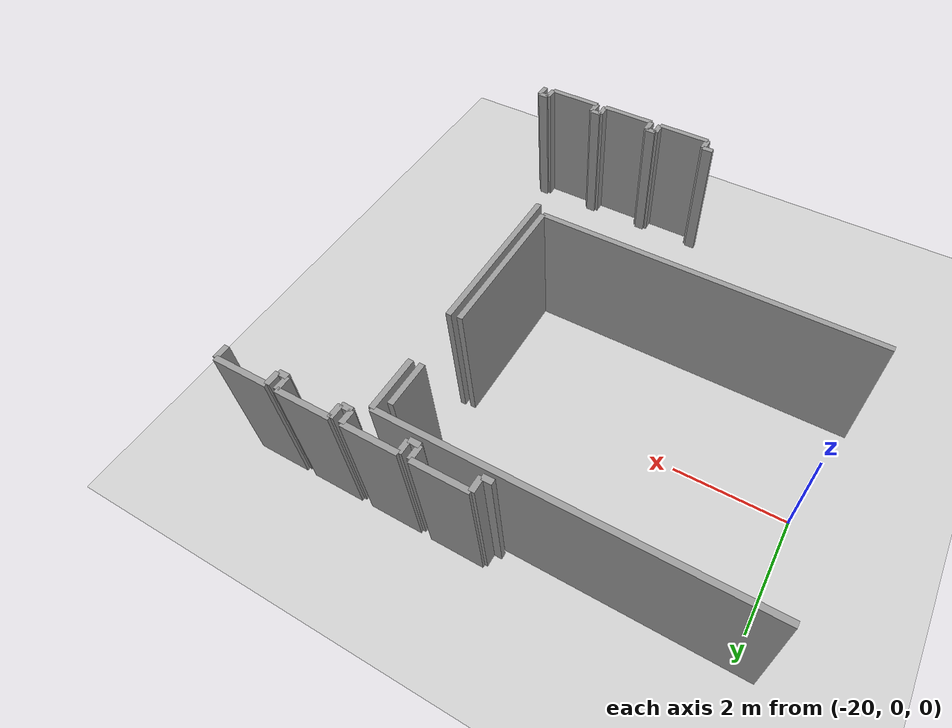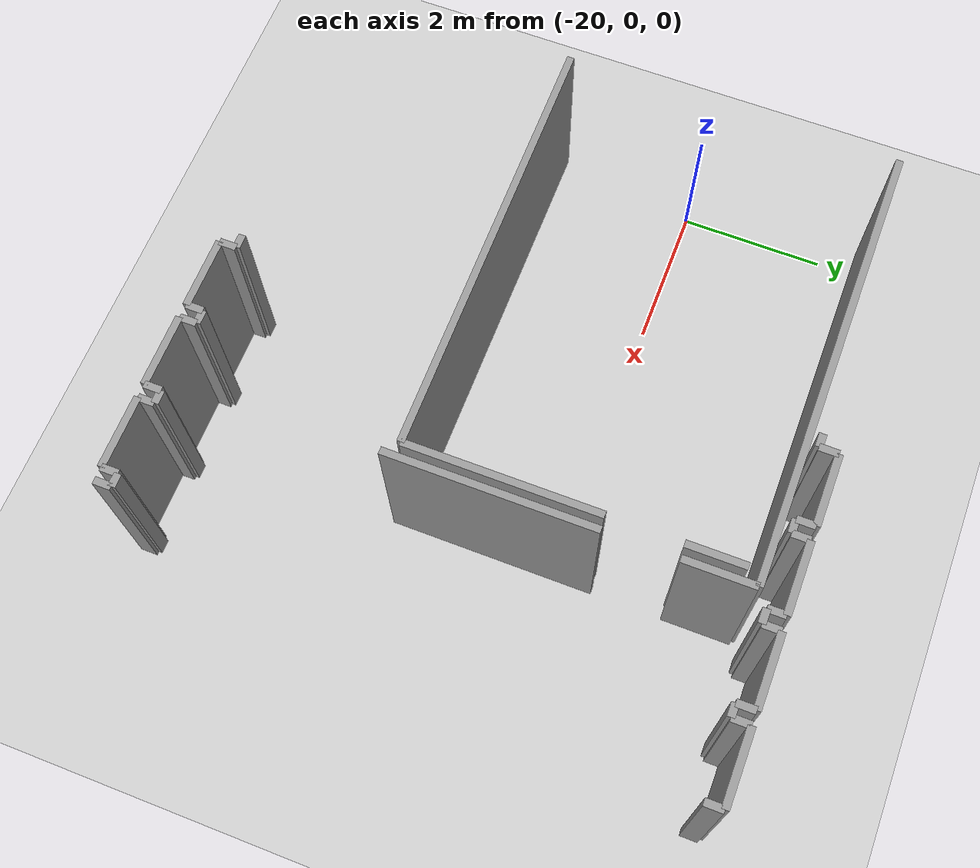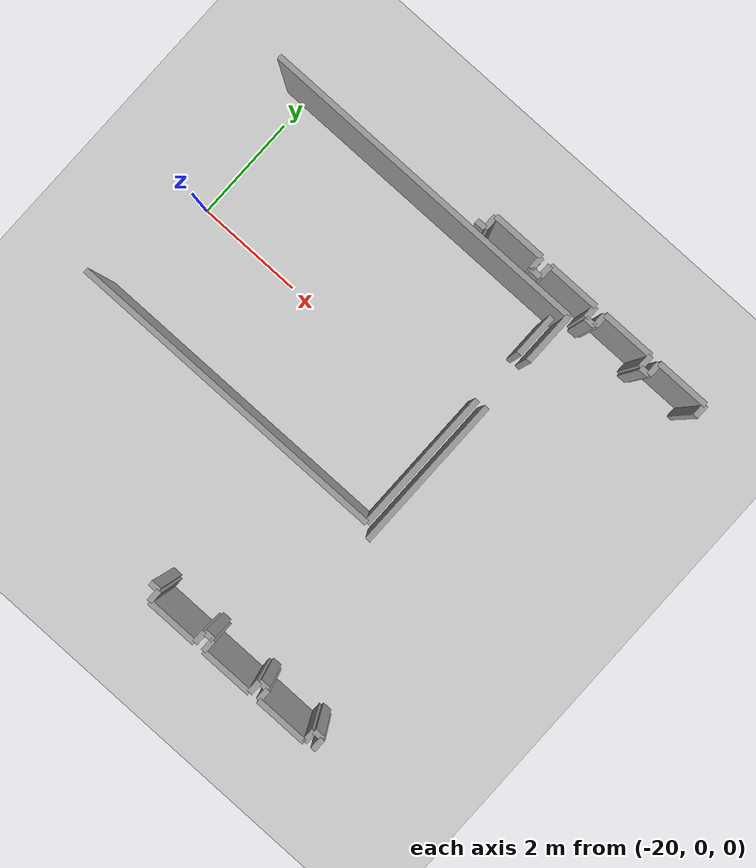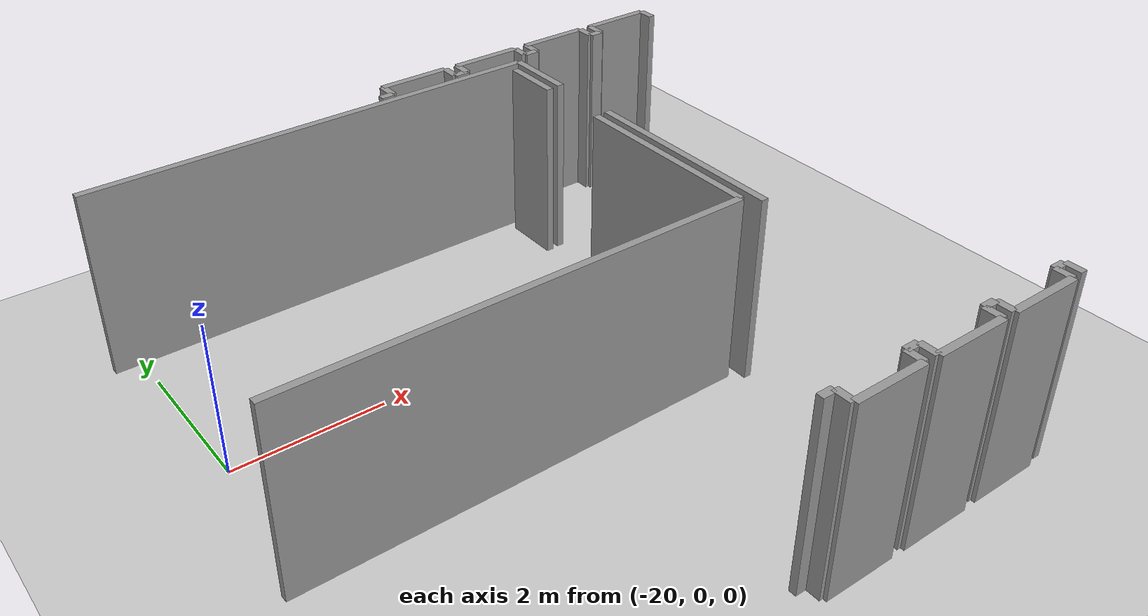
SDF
<sdf version="1.6">
 <world name="default">
  <model name="ground_plane">
   <static>1</static>
   <link name="link">
    <collision name="collision">
     <geometry><plane><normal>0 0 1</normal><size>100 100</size></plane></geometry>
     <surface><friction><ode><mu>100</mu><mu2>50</mu2></ode></friction></surface>
    </collision>
    <visual name="visual">
     <cast_shadows>0</cast_shadows>
     <geometry><plane><normal>0 0 1</normal><size>100 100</size></plane></geometry>
     <material>
      <script><uri>file://media/materials/scripts/gazebo.material</uri><name>Gazebo/Grey</name></script>
     </material>
    </visual>
   </link>
  </model>
  <model name="0510025536_Layout1_PLAN5">
   <static>1</static>
   <link name="Wall_3">
    <collision name="Wall_3_Collision">
     <geometry><box><size>0.789003825088 0.1 2.5</size></box></geometry>
     <pose>0.394501912544 0 1.25 0 0 0</pose>
    </collision>
    <visual name="Wall_3_Visual">
     <pose>0.394501912544 0 1.25 0 0 0</pose>
     <geometry><box><size>0.789003825088 0.1 2.5</size></box></geometry>
     <material>
      <script><uri>file://media/materials/scripts/gazebo.material</uri><name>Gazebo/Grey</name></script>
      <ambient>1 1 1 1</ambient>
     </material>
    </visual>
    <pose>5.97464767254 -0.589660825253 0 0 0 -1.57079632679</pose>
   </link>
   <link name="Wall_4">
    <collision name="Wall_4_Collision">
     <geometry><box><size>2.6053169994 0.1 2.5</size></box></geometry>
     <pose>1.3026584997 0 1.25 0 0 0</pose>
    </collision>
    <visual name="Wall_4_Visual">
     <pose>1.3026584997 0 1.25 0 0 0</pose>
     <geometry><box><size>2.6053169994 0.1 2.5</size></box></geometry>
     <material>
      <script><uri>file://media/materials/scripts/gazebo.material</uri><name>Gazebo/Grey</name></script>
      <ambient>1 1 1 1</ambient>
     </material>
    </visual>
    <pose>5.97464767254 -2.35866871688 0 0 0 -1.57079632679</pose>
   </link>
   <link name="Wall_5">
    <collision name="Wall_5_Collision">
     <geometry><box><size>5.97465078634 0.1 2.5</size></box></geometry>
     <pose>2.98732539317 0 1.25 0 0 0</pose>
    </collision>
    <visual name="Wall_5_Visual">
     <pose>2.98732539317 0 1.25 0 0 0</pose>
     <geometry><box><size>5.97465078634 0.1 2.5</size></box></geometry>
     <material>
      <script><uri>file://media/materials/scripts/gazebo.material</uri><name>Gazebo/Grey</name></script>
      <ambient>1 1 1 1</ambient>
     </material>
    </visual>
    <pose>5.97464767254 -4.96398571628 0 0 0 -3.14057170536</pose>
   </link>
   <link name="Wall_17">
    <collision name="Wall_17_Collision">
     <geometry><box><size>0.230903152838 0.1 2.5</size></box></geometry>
     <pose>0.115451576419 0 1.25 0 0 0</pose>
    </collision>
    <visual name="Wall_17_Visual">
     <pose>0.115451576419 0 1.25 0 0 0</pose>
     <geometry><box><size>0.230903152838 0.1 2.5</size></box></geometry>
     <material>
      <script><uri>file://media/materials/scripts/gazebo.material</uri><name>Gazebo/Grey</name></script>
      <ambient>1 1 1 1</ambient>
     </material>
    </visual>
    <pose>7.72433950515 -8.17407327394 0 0 0 1.57079632679</pose>
   </link>
   <link name="Wall_18">
    <collision name="Wall_18_Collision">
     <geometry><box><size>0.178864164898 0.1 2.5</size></box></geometry>
     <pose>0.0894320824491 0 1.25 0 0 0</pose>
    </collision>
    <visual name="Wall_18_Visual">
     <pose>0.0894320824491 0 1.25 0 0 0</pose>
     <geometry><box><size>0.178864164898 0.1 2.5</size></box></geometry>
     <material>
      <script><uri>file://media/materials/scripts/gazebo.material</uri><name>Gazebo/Grey</name></script>
      <ambient>1 1 1 1</ambient>
     </material>
    </visual>
    <pose>7.72433950515 -7.94317012111 0 0 0 3.14159265359</pose>
   </link>
   <link name="Wall_19">
    <collision name="Wall_19_Collision">
     <geometry><box><size>0.228043867787 0.1 2.5</size></box></geometry>
     <pose>0.114021933893 0 1.25 0 0 0</pose>
    </collision>
    <visual name="Wall_19_Visual">
     <pose>0.114021933893 0 1.25 0 0 0</pose>
     <geometry><box><size>0.228043867787 0.1 2.5</size></box></geometry>
     <material>
      <script><uri>file://media/materials/scripts/gazebo.material</uri><name>Gazebo/Grey</name></script>
      <ambient>1 1 1 1</ambient>
     </material>
    </visual>
    <pose>7.54547534025 -7.94317012111 0 0 0 -1.57079632679</pose>
   </link>
   <link name="Wall_20">
    <collision name="Wall_20_Collision">
     <geometry><box><size>0.975143281951 0.1 2.5</size></box></geometry>
     <pose>0.487571640975 0 1.25 0 0 0</pose>
    </collision>
    <visual name="Wall_20_Visual">
     <pose>0.487571640975 0 1.25 0 0 0</pose>
     <geometry><box><size>0.975143281951 0.1 2.5</size></box></geometry>
     <material>
      <script><uri>file://media/materials/scripts/gazebo.material</uri><name>Gazebo/Grey</name></script>
      <ambient>1 1 1 1</ambient>
     </material>
    </visual>
    <pose>7.54547534025 -8.17121398889 0 0 0 3.14159265359</pose>
   </link>
   <link name="Wall_21">
    <collision name="Wall_21_Collision">
     <geometry><box><size>0.226709534763 0.1 2.5</size></box></geometry>
     <pose>0.113354767381 0 1.25 0 0 0</pose>
    </collision>
    <visual name="Wall_21_Visual">
     <pose>0.113354767381 0 1.25 0 0 0</pose>
     <geometry><box><size>0.226709534763 0.1 2.5</size></box></geometry>
     <material>
      <script><uri>file://media/materials/scripts/gazebo.material</uri><name>Gazebo/Grey</name></script>
      <ambient>1 1 1 1</ambient>
     </material>
    </visual>
    <pose>6.5703320583 -8.17121398889 0 0 0 1.57079632679</pose>
   </link>
   <link name="Wall_22">
    <collision name="Wall_22_Collision">
     <geometry><box><size>0.183057782974 0.1 2.5</size></box></geometry>
     <pose>0.091528891487 0 1.25 0 0 0</pose>
    </collision>
    <visual name="Wall_22_Visual">
     <pose>0.091528891487 0 1.25 0 0 0</pose>
     <geometry><box><size>0.183057782974 0.1 2.5</size></box></geometry>
     <material>
      <script><uri>file://media/materials/scripts/gazebo.material</uri><name>Gazebo/Grey</name></script>
      <ambient>1 1 1 1</ambient>
     </material>
    </visual>
    <pose>6.5703320583 -7.94450445413 0 0 0 3.14159265359</pose>
   </link>
   <link name="Wall_23">
    <collision name="Wall_23_Collision">
     <geometry><box><size>0.233571818887 0.1 2.5</size></box></geometry>
     <pose>0.116785909443 0 1.25 0 0 0</pose>
    </collision>
    <visual name="Wall_23_Visual">
     <pose>0.116785909443 0 1.25 0 0 0</pose>
     <geometry><box><size>0.233571818887 0.1 2.5</size></box></geometry>
     <material>
      <script><uri>file://media/materials/scripts/gazebo.material</uri><name>Gazebo/Grey</name></script>
      <ambient>1 1 1 1</ambient>
     </material>
    </visual>
    <pose>6.38727427533 -7.94450445413 0 0 0 -1.57079632679</pose>
   </link>
   <link name="Wall_24">
    <collision name="Wall_24_Collision">
     <geometry><box><size>0.979654598366 0.1 2.5</size></box></geometry>
     <pose>0.489827299183 0 1.25 0 0 0</pose>
    </collision>
    <visual name="Wall_24_Visual">
     <pose>0.489827299183 0 1.25 0 0 0</pose>
     <geometry><box><size>0.979654598366 0.1 2.5</size></box></geometry>
     <material>
      <script><uri>file://media/materials/scripts/gazebo.material</uri><name>Gazebo/Grey</name></script>
      <ambient>1 1 1 1</ambient>
     </material>
    </visual>
    <pose>6.38727427533 -8.17807627302 0 0 0 3.14159265359</pose>
   </link>
   <link name="Wall_25">
    <collision name="Wall_25_Collision">
     <geometry><box><size>0.236748802277 0.1 2.5</size></box></geometry>
     <pose>0.118374401139 0 1.25 0 0 0</pose>
    </collision>
    <visual name="Wall_25_Visual">
     <pose>0.118374401139 0 1.25 0 0 0</pose>
     <geometry><box><size>0.236748802277 0.1 2.5</size></box></geometry>
     <material>
      <script><uri>file://media/materials/scripts/gazebo.material</uri><name>Gazebo/Grey</name></script>
      <ambient>1 1 1 1</ambient>
     </material>
    </visual>
    <pose>5.40761967696 -8.17807627302 0 0 0 1.57079632679</pose>
   </link>
   <link name="Wall_26">
    <collision name="Wall_26_Collision">
     <geometry><box><size>0.186107687029 0.1 2.5</size></box></geometry>
     <pose>0.0930538435145 0 1.25 0 0 0</pose>
    </collision>
    <visual name="Wall_26_Visual">
     <pose>0.0930538435145 0 1.25 0 0 0</pose>
     <geometry><box><size>0.186107687029 0.1 2.5</size></box></geometry>
     <material>
      <script><uri>file://media/materials/scripts/gazebo.material</uri><name>Gazebo/Grey</name></script>
      <ambient>1 1 1 1</ambient>
     </material>
    </visual>
    <pose>5.40761967696 -7.94132747074 0 0 0 3.14159265359</pose>
   </link>
   <link name="Wall_27">
    <collision name="Wall_27_Collision">
     <geometry><box><size>0.230394835496 0.1 2.5</size></box></geometry>
     <pose>0.115197417748 0 1.25 0 0 0</pose>
    </collision>
    <visual name="Wall_27_Visual">
     <pose>0.115197417748 0 1.25 0 0 0</pose>
     <geometry><box><size>0.230394835496 0.1 2.5</size></box></geometry>
     <material>
      <script><uri>file://media/materials/scripts/gazebo.material</uri><name>Gazebo/Grey</name></script>
      <ambient>1 1 1 1</ambient>
     </material>
    </visual>
    <pose>5.22151198994 -7.94132747074 0 0 0 -1.57079632679</pose>
   </link>
   <link name="Wall_28">
    <collision name="Wall_28_Collision">
     <geometry><box><size>0.965612331779 0.1 2.5</size></box></geometry>
     <pose>0.482806165889 0 1.25 0 0 0</pose>
    </collision>
    <visual name="Wall_28_Visual">
     <pose>0.482806165889 0 1.25 0 0 0</pose>
     <geometry><box><size>0.965612331779 0.1 2.5</size></box></geometry>
     <material>
      <script><uri>file://media/materials/scripts/gazebo.material</uri><name>Gazebo/Grey</name></script>
      <ambient>1 1 1 1</ambient>
     </material>
    </visual>
    <pose>5.22151198994 -8.17172230624 0 0 0 3.14159265359</pose>
   </link>
   <link name="Wall_29">
    <collision name="Wall_29_Collision">
     <geometry><box><size>0.232491644534 0.1 2.5</size></box></geometry>
     <pose>0.116245822267 0 1.25 0 0 0</pose>
    </collision>
    <visual name="Wall_29_Visual">
     <pose>0.116245822267 0 1.25 0 0 0</pose>
     <geometry><box><size>0.232491644534 0.1 2.5</size></box></geometry>
     <material>
      <script><uri>file://media/materials/scripts/gazebo.material</uri><name>Gazebo/Grey</name></script>
      <ambient>1 1 1 1</ambient>
     </material>
    </visual>
    <pose>4.25589965816 -8.17172230624 0 0 0 1.57079632679</pose>
   </link>
   <link name="Wall_30">
    <collision name="Wall_30_Collision">
     <geometry><box><size>0.191000241451 0.1 2.5</size></box></geometry>
     <pose>0.0955001207254 0 1.25 0 0 0</pose>
    </collision>
    <visual name="Wall_30_Visual">
     <pose>0.0955001207254 0 1.25 0 0 0</pose>
     <geometry><box><size>0.191000241451 0.1 2.5</size></box></geometry>
     <material>
      <script><uri>file://media/materials/scripts/gazebo.material</uri><name>Gazebo/Grey</name></script>
      <ambient>1 1 1 1</ambient>
     </material>
    </visual>
    <pose>4.25589965816 -7.9392306617 0 0 0 3.14159265359</pose>
   </link>
   <link name="Wall_47">
    <collision name="Wall_47_Collision">
     <geometry><box><size>2.81823842625 0.1 2.5</size></box></geometry>
     <pose>1.40911921312 0 1.25 0 0 0</pose>
    </collision>
    <visual name="Wall_47_Visual">
     <pose>1.40911921312 0 1.25 0 0 0</pose>
     <geometry><box><size>2.81823842625 0.1 2.5</size></box></geometry>
     <material>
      <script><uri>file://media/materials/scripts/gazebo.material</uri><name>Gazebo/Grey</name></script>
      <ambient>1 1 1 1</ambient>
     </material>
    </visual>
    <pose>6.16393234296 -5.15612967175 0 0 0 1.57079632679</pose>
   </link>
   <link name="Wall_48">
    <collision name="Wall_48_Collision">
     <geometry><box><size>0.954194253472 0.1 2.5</size></box></geometry>
     <pose>0.477097126736 0 1.25 0 0 0</pose>
    </collision>
    <visual name="Wall_48_Visual">
     <pose>0.477097126736 0 1.25 0 0 0</pose>
     <geometry><box><size>0.954194253472 0.1 2.5</size></box></geometry>
     <material>
      <script><uri>file://media/materials/scripts/gazebo.material</uri><name>Gazebo/Grey</name></script>
      <ambient>1 1 1 1</ambient>
     </material>
    </visual>
    <pose>6.16393234296 -1.36065115452 0 0 0 1.57079632679</pose>
   </link>
   <link name="Wall_49">
    <collision name="Wall_49_Collision">
     <geometry><box><size>6.16335413198 0.1 2.5</size></box></geometry>
     <pose>3.08167706599 0 1.25 0 0 0</pose>
    </collision>
    <visual name="Wall_49_Visual">
     <pose>3.08167706599 0 1.25 0 0 0</pose>
     <geometry><box><size>6.16335413198 0.1 2.5</size></box></geometry>
     <material>
      <script><uri>file://media/materials/scripts/gazebo.material</uri><name>Gazebo/Grey</name></script>
      <ambient>1 1 1 1</ambient>
     </material>
    </visual>
    <pose>6.16393234296 -0.406456901043 0 0 0 3.14159265359</pose>
   </link>
   <link name="Wall_65">
    <collision name="Wall_65_Collision">
     <geometry><box><size>0.18318486231 0.1 2.5</size></box></geometry>
     <pose>0.0915924311548 0 1.25 0 0 0</pose>
    </collision>
    <visual name="Wall_65_Visual">
     <pose>0.0915924311548 0 1.25 0 0 0</pose>
     <geometry><box><size>0.18318486231 0.1 2.5</size></box></geometry>
     <material>
      <script><uri>file://media/materials/scripts/gazebo.material</uri><name>Gazebo/Grey</name></script>
      <ambient>1 1 1 1</ambient>
     </material>
    </visual>
    <pose>4.0666785274 -0.256217356496 0 0 0 0.0</pose>
   </link>
   <link name="Wall_66">
    <collision name="Wall_66_Collision">
     <geometry><box><size>0.255467588415 0.1 2.5</size></box></geometry>
     <pose>0.127733794208 0 1.25 0 0 0</pose>
    </collision>
    <visual name="Wall_66_Visual">
     <pose>0.127733794208 0 1.25 0 0 0</pose>
     <geometry><box><size>0.255467588415 0.1 2.5</size></box></geometry>
     <material>
      <script><uri>file://media/materials/scripts/gazebo.material</uri><name>Gazebo/Grey</name></script>
      <ambient>1 1 1 1</ambient>
     </material>
    </visual>
    <pose>4.24986338971 -0.256217356496 0 0 0 1.57079632679</pose>
   </link>
   <link name="Wall_67">
    <collision name="Wall_67_Collision">
     <geometry><box><size>0.972411076235 0.1 2.5</size></box></geometry>
     <pose>0.486205538117 0 1.25 0 0 0</pose>
    </collision>
    <visual name="Wall_67_Visual">
     <pose>0.486205538117 0 1.25 0 0 0</pose>
     <geometry><box><size>0.972411076235 0.1 2.5</size></box></geometry>
     <material>
      <script><uri>file://media/materials/scripts/gazebo.material</uri><name>Gazebo/Grey</name></script>
      <ambient>1 1 1 1</ambient>
     </material>
    </visual>
    <pose>4.24986338971 -0.000749768080212 0 0 0 0.0</pose>
   </link>
   <link name="Wall_68">
    <collision name="Wall_68_Collision">
     <geometry><box><size>0.248484578923 0.1 2.5</size></box></geometry>
     <pose>0.124242289461 0 1.25 0 0 0</pose>
    </collision>
    <visual name="Wall_68_Visual">
     <pose>0.124242289461 0 1.25 0 0 0</pose>
     <geometry><box><size>0.248484578923 0.1 2.5</size></box></geometry>
     <material>
      <script><uri>file://media/materials/scripts/gazebo.material</uri><name>Gazebo/Grey</name></script>
      <ambient>1 1 1 1</ambient>
     </material>
    </visual>
    <pose>5.22227446595 -0.000749768080212 0 0 0 -1.57079632679</pose>
   </link>
   <link name="Wall_69">
    <collision name="Wall_69_Collision">
     <geometry><box><size>0.188839892745 0.1 2.5</size></box></geometry>
     <pose>0.0944199463725 0 1.25 0 0 0</pose>
    </collision>
    <visual name="Wall_69_Visual">
     <pose>0.0944199463725 0 1.25 0 0 0</pose>
     <geometry><box><size>0.188839892745 0.1 2.5</size></box></geometry>
     <material>
      <script><uri>file://media/materials/scripts/gazebo.material</uri><name>Gazebo/Grey</name></script>
      <ambient>1 1 1 1</ambient>
     </material>
    </visual>
    <pose>5.22227446595 -0.249234347003 0 0 0 0.0</pose>
   </link>
   <link name="Wall_70">
    <collision name="Wall_70_Collision">
     <geometry><box><size>0.240224422107 0.1 2.5</size></box></geometry>
     <pose>0.120112211053 0 1.25 0 0 0</pose>
    </collision>
    <visual name="Wall_70_Visual">
     <pose>0.120112211053 0 1.25 0 0 0</pose>
     <geometry><box><size>0.240224422107 0.1 2.5</size></box></geometry>
     <material>
      <script><uri>file://media/materials/scripts/gazebo.material</uri><name>Gazebo/Grey</name></script>
      <ambient>1 1 1 1</ambient>
     </material>
    </visual>
    <pose>5.41111435869 -0.249234347003 0 0 0 1.57079632679</pose>
   </link>
   <link name="Wall_71">
    <collision name="Wall_71_Collision">
     <geometry><box><size>0.968153918491 0.1 2.5</size></box></geometry>
     <pose>0.484076959246 0 1.25 0 0 0</pose>
    </collision>
    <visual name="Wall_71_Visual">
     <pose>0.484076959246 0 1.25 0 0 0</pose>
     <geometry><box><size>0.968153918491 0.1 2.5</size></box></geometry>
     <material>
      <script><uri>file://media/materials/scripts/gazebo.material</uri><name>Gazebo/Grey</name></script>
      <ambient>1 1 1 1</ambient>
     </material>
    </visual>
    <pose>5.41111435869 -0.00900992489611 0 0 0 0.0</pose>
   </link>
   <link name="Wall_72">
    <collision name="Wall_72_Collision">
     <geometry><box><size>0.241399905961 0.1 2.5</size></box></geometry>
     <pose>0.120699952981 0 1.25 0 0 0</pose>
    </collision>
    <visual name="Wall_72_Visual">
     <pose>0.120699952981 0 1.25 0 0 0</pose>
     <geometry><box><size>0.241399905961 0.1 2.5</size></box></geometry>
     <material>
      <script><uri>file://media/materials/scripts/gazebo.material</uri><name>Gazebo/Grey</name></script>
      <ambient>1 1 1 1</ambient>
     </material>
    </visual>
    <pose>6.37926827719 -0.00900992489611 0 0 0 -1.57079632679</pose>
   </link>
   <link name="Wall_73">
    <collision name="Wall_73_Collision">
     <geometry><box><size>0.194876161187 0.1 2.5</size></box></geometry>
     <pose>0.0974380805937 0 1.25 0 0 0</pose>
    </collision>
    <visual name="Wall_73_Visual">
     <pose>0.0974380805937 0 1.25 0 0 0</pose>
     <geometry><box><size>0.194876161187 0.1 2.5</size></box></geometry>
     <material>
      <script><uri>file://media/materials/scripts/gazebo.material</uri><name>Gazebo/Grey</name></script>
      <ambient>1 1 1 1</ambient>
     </material>
    </visual>
    <pose>6.37926827719 -0.250409830857 0 0 0 0.0</pose>
   </link>
   <link name="Wall_74">
    <collision name="Wall_74_Collision">
     <geometry><box><size>0.24335692773 0.1 2.5</size></box></geometry>
     <pose>0.121678463865 0 1.25 0 0 0</pose>
    </collision>
    <visual name="Wall_74_Visual">
     <pose>0.121678463865 0 1.25 0 0 0</pose>
     <geometry><box><size>0.24335692773 0.1 2.5</size></box></geometry>
     <material>
      <script><uri>file://media/materials/scripts/gazebo.material</uri><name>Gazebo/Grey</name></script>
      <ambient>1 1 1 1</ambient>
     </material>
    </visual>
    <pose>6.57414443837 -0.250409830857 0 0 0 1.57079632679</pose>
   </link>
   <link name="Wall_75">
    <collision name="Wall_75_Collision">
     <geometry><box><size>0.970123648194 0.1 2.5</size></box></geometry>
     <pose>0.485061824097 0 1.25 0 0 0</pose>
    </collision>
    <visual name="Wall_75_Visual">
     <pose>0.485061824097 0 1.25 0 0 0</pose>
     <geometry><box><size>0.970123648194 0.1 2.5</size></box></geometry>
     <material>
      <script><uri>file://media/materials/scripts/gazebo.material</uri><name>Gazebo/Grey</name></script>
      <ambient>1 1 1 1</ambient>
     </material>
    </visual>
    <pose>6.57414443837 -0.00705290312742 0 0 0 0.0</pose>
   </link>
   <link name="Wall_76">
    <collision name="Wall_76_Collision">
     <geometry><box><size>0.249132683534 0.1 2.5</size></box></geometry>
     <pose>0.124566341767 0 1.25 0 0 0</pose>
    </collision>
    <visual name="Wall_76_Visual">
     <pose>0.124566341767 0 1.25 0 0 0</pose>
     <geometry><box><size>0.249132683534 0.1 2.5</size></box></geometry>
     <material>
      <script><uri>file://media/materials/scripts/gazebo.material</uri><name>Gazebo/Grey</name></script>
      <ambient>1 1 1 1</ambient>
     </material>
    </visual>
    <pose>7.54426808657 -0.00705290312742 0 0 0 -1.57079632679</pose>
   </link>
   <link name="Wall_77">
    <collision name="Wall_77_Collision">
     <geometry><box><size>0.176957974864 0.1 2.5</size></box></geometry>
     <pose>0.0884789874319 0 1.25 0 0 0</pose>
    </collision>
    <visual name="Wall_77_Visual">
     <pose>0.0884789874319 0 1.25 0 0 0</pose>
     <geometry><box><size>0.176957974864 0.1 2.5</size></box></geometry>
     <material>
      <script><uri>file://media/materials/scripts/gazebo.material</uri><name>Gazebo/Grey</name></script>
      <ambient>1 1 1 1</ambient>
     </material>
    </visual>
    <pose>7.54426808657 -0.256185586662 0 0 0 0.0</pose>
   </link>
   <link name="Wall_78">
    <collision name="Wall_78_Collision">
     <geometry><box><size>0.247175661766 0.1 2.5</size></box></geometry>
     <pose>0.123587830883 0 1.25 0 0 0</pose>
    </collision>
    <visual name="Wall_78_Visual">
     <pose>0.123587830883 0 1.25 0 0 0</pose>
     <geometry><box><size>0.247175661766 0.1 2.5</size></box></geometry>
     <material>
      <script><uri>file://media/materials/scripts/gazebo.material</uri><name>Gazebo/Grey</name></script>
      <ambient>1 1 1 1</ambient>
     </material>
    </visual>
    <pose>7.72122606143 -0.256185586662 0 0 0 1.57079632679</pose>
   </link>
   <link name="Wall_79">
    <collision name="Wall_79_Collision">
     <geometry><box><size>0.980798312386 0.1 2.5</size></box></geometry>
     <pose>0.490399156193 0 1.25 0 0 0</pose>
    </collision>
    <visual name="Wall_79_Visual">
     <pose>0.490399156193 0 1.25 0 0 0</pose>
     <geometry><box><size>0.980798312386 0.1 2.5</size></box></geometry>
     <material>
      <script><uri>file://media/materials/scripts/gazebo.material</uri><name>Gazebo/Grey</name></script>
      <ambient>1 1 1 1</ambient>
     </material>
    </visual>
    <pose>7.72122606143 -0.00900992489611 0 0 0 0.0</pose>
   </link>
   <link name="Wall_80">
    <collision name="Wall_80_Collision">
     <geometry><box><size>0.243833475239 0.1 2.5</size></box></geometry>
     <pose>0.121916737619 0 1.25 0 0 0</pose>
    </collision>
    <visual name="Wall_80_Visual">
     <pose>0.121916737619 0 1.25 0 0 0</pose>
     <geometry><box><size>0.243833475239 0.1 2.5</size></box></geometry>
     <material>
      <script><uri>file://media/materials/scripts/gazebo.material</uri><name>Gazebo/Grey</name></script>
      <ambient>1 1 1 1</ambient>
     </material>
    </visual>
    <pose>8.70202437382 -0.00900992489611 0 0 0 -1.57079632679</pose>
   </link>
   <pose>-20.35 2.93385838279 0 0 0 0</pose>
  </model>
 </world>
</sdf>
